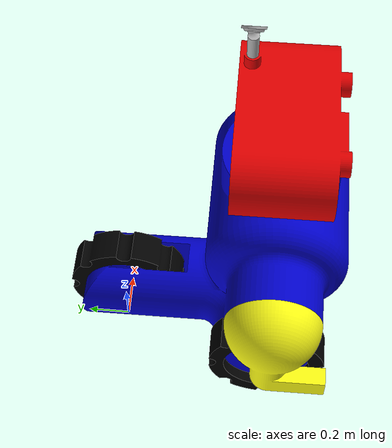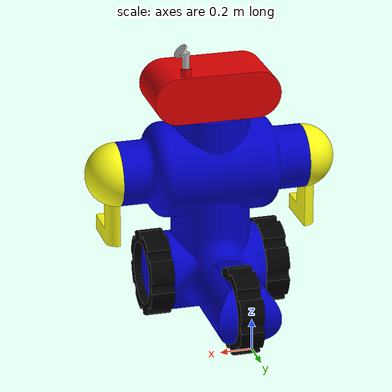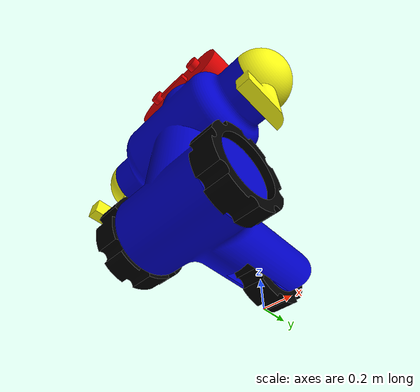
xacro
<?xml version="1.0" ?>
<robot name="pongbot" xmlns:xacro="http://www.ros.org/wiki/xacro">

<xacro:include filename="$(find pongbot_description)/urdf/materials.xacro" />
<xacro:include filename="$(find pongbot_description)/urdf/pongbot.trans" />
<xacro:include filename="$(find pongbot_description)/urdf/pongbot.gazebo" />
<link name="base_link">
  <inertial>
    <origin xyz="0 0 0" rpy="0 0 0"/>
    <mass value="20"/>
    <inertia ixx="808.254731" iyy="900.453782" izz="496.327433" ixy="-0.0" iyz="128.494196" ixz="1e-05"/>
  </inertial>
  <visual>
    <origin xyz="0 0 0" rpy="0 0 0"/>
    <geometry>
      <mesh filename="file://$(find pongbot_description)/meshes/base_link.stl" scale="0.001 0.001 0.001"/>
    </geometry>
    <material name="blue"/>
  </visual>
  <collision>
    <origin xyz="0 0 0" rpy="0 0 0"/>
    <geometry>
      <mesh filename="file://$(find pongbot_description)/meshes/base_link.stl" scale="0.001 0.001 0.001"/>
    </geometry>
  </collision>
</link>

<link name="anthena_link_1">
  <inertial>
    <origin xyz="0 0 0" rpy="0 0 0"/>
    <mass value="0.65"/>
    <inertia ixx="0.004182" iyy="0.004488" izz="0.001811" ixy="0.0" iyz="-0.0" ixz="-0.000791"/>
  </inertial>
  <visual>
    <origin xyz="-0.26218 0.560114 -1.669523" rpy="0 0 0"/>
    <geometry>
      <mesh filename="file://$(find pongbot_description)/meshes/anthena_link_1.stl" scale="0.001 0.001 0.001"/>
    </geometry>
    <material name="silver"/>
  </visual>
  <collision>
    <origin xyz="-0.26218 0.560114 -1.669523" rpy="0 0 0"/>
    <geometry>
      <mesh filename="file://$(find pongbot_description)/meshes/anthena_link_1.stl" scale="0.001 0.001 0.001"/>
    </geometry>
  </collision>
</link>

<link name="head_link_1">
  <inertial>
    <origin xyz="0 0 0" rpy="0 0 0"/>
    <mass value="3"/>
    <inertia ixx="14.707539" iyy="37.183145" izz="42.175614" ixy="-0.040836" iyz="-0.028194" ixz="-0.046689"/>
  </inertial>
  <visual>
    <origin xyz="-0.0675 0.709437 -1.319523" rpy="0 0 0"/>
    <geometry>
      <mesh filename="file://$(find pongbot_description)/meshes/head_link_1.stl" scale="0.001 0.001 0.001"/>
    </geometry>
    <material name="red"/>
  </visual>
  <collision>
    <origin xyz="-0.0675 0.709437 -1.319523" rpy="0 0 0"/>
    <geometry>
      <mesh filename="file://$(find pongbot_description)/meshes/head_link_1.stl" scale="0.001 0.001 0.001"/>
    </geometry>
  </collision>
</link>

<link name="armL_link_1">
  <inertial>
    <origin xyz="0 0 0" rpy="0 0 0"/>
    <mass value="3"/>
    <inertia ixx="5.853631" iyy="4.853082" izz="1.732494" ixy="-0.045403" iyz="-0.582125" ixz="-0.343273"/>
  </inertial>
  <visual>
    <origin xyz="-0.6675 0.713553 -0.956524" rpy="0 0 0"/>
    <geometry>
      <mesh filename="file://$(find pongbot_description)/meshes/armL_link_1.stl" scale="0.001 0.001 0.001"/>
    </geometry>
    <material name="yellow"/>
  </visual>
  <collision>
    <origin xyz="-0.6675 0.713553 -0.956524" rpy="0 0 0"/>
    <geometry>
      <mesh filename="file://$(find pongbot_description)/meshes/armL_link_1.stl" scale="0.001 0.001 0.001"/>
    </geometry>
  </collision>
</link>

<link name="wheelB_link_1">
  <inertial>
    <origin xyz="0 0 0" rpy="0 0 0"/>
    <mass value="30"/>
    <inertia ixx="50.719663" iyy="30.054976" izz="30.054976" ixy="-0.0" iyz="-0.0" ixz="0.0"/>
  </inertial>
  <visual>
    <origin xyz="-0.0675 0.009437 -0.269523" rpy="0 0 0"/>
    <geometry>
      <mesh filename="file://$(find pongbot_description)/meshes/wheelB_link_1.stl" scale="0.001 0.001 0.001"/>
    </geometry>
    <material name="black"/>
  </visual>
  <collision>
    <origin xyz="-0.0675 0.009437 -0.269523" rpy="0 0 0"/>
    <geometry>
      <mesh filename="file://$(find pongbot_description)/meshes/wheelB_link_1.stl" scale="0.001 0.001 0.001"/>
    </geometry>
  </collision>
</link>

<link name="wheelL_link_1">
  <inertial>
    <origin xyz="0 0 0" rpy="0 0 0"/>
    <mass value="20"/>
    <inertia ixx="50.719663" iyy="30.054976" izz="30.054976" ixy="0.0" iyz="-0.0" ixz="0.0"/>
  </inertial>
  <visual>
    <origin xyz="-0.3675 0.709437 -0.269523" rpy="0 0 0"/>
    <geometry>
      <mesh filename="file://$(find pongbot_description)/meshes/wheelL_link_1.stl" scale="0.001 0.001 0.001"/>
    </geometry>
    <material name="black"/>
  </visual>
  <collision>
    <origin xyz="-0.3675 0.709437 -0.269523" rpy="0 0 0"/>
    <geometry>
      <mesh filename="file://$(find pongbot_description)/meshes/wheelL_link_1.stl" scale="0.001 0.001 0.001"/>
    </geometry>
  </collision>
</link>

<link name="wheelR_link_1">
  <inertial>
    <origin xyz="0 0 0" rpy="0 0 0"/>
    <mass value="20"/>
    <inertia ixx="50.719663" iyy="30.054976" izz="30.054976" ixy="0.0" iyz="-0.0" ixz="0.0"/>
  </inertial>
  <visual>
    <origin xyz="0.2325 0.709437 -0.269523" rpy="0 0 0"/>
    <geometry>
      <mesh filename="file://$(find pongbot_description)/meshes/wheelR_link_1.stl" scale="0.001 0.001 0.001"/>
    </geometry>
    <material name="black"/>
  </visual>
  <collision>
    <origin xyz="0.2325 0.709437 -0.269523" rpy="0 0 0"/>
    <geometry>
      <mesh filename="file://$(find pongbot_description)/meshes/wheelR_link_1.stl" scale="0.001 0.001 0.001"/>
    </geometry>
  </collision>
</link>

<link name="armR_link_1">
  <inertial>
    <origin xyz="0 0 0" rpy="0 0 0"/>
    <mass value="3"/>
    <inertia ixx="5.853631" iyy="4.853082" izz="1.732494" ixy="0.045403" iyz="-0.582125" ixz="0.343273"/>
  </inertial>
  <visual>
    <origin xyz="0.5325 0.713553 -0.956524" rpy="0 0 0"/>
    <geometry>
      <mesh filename="file://$(find pongbot_description)/meshes/armR_link_1.stl" scale="0.001 0.001 0.001"/>
    </geometry>
    <material name="yellow"/>
  </visual>
  <collision>
    <origin xyz="0.5325 0.713553 -0.956524" rpy="0 0 0"/>
    <geometry>
      <mesh filename="file://$(find pongbot_description)/meshes/armR_link_1.stl" scale="0.001 0.001 0.001"/>
    </geometry>
  </collision>
</link>

<joint name="anthena_link" type="continuous">
  <origin xyz="0.19468 0.149323 0.35" rpy="0 0 0"/>
  <parent link="head_link_1"/>
  <child link="anthena_link_1"/>
  <axis xyz="0.0 0.0 1.0"/>
</joint>

<joint name="armL_link" type="fixed">
  <origin xyz="0.6675 -0.713553 0.956524" rpy="0 0 0"/>
  <parent link="base_link"/>
  <child link="armL_link_1"/>
  <axis xyz="1.0 0.0 0.0"/>
</joint>

<joint name="armR_link" type="fixed">
  <origin xyz="-0.5325 -0.713553 0.956524" rpy="0 0 0"/>
  <parent link="base_link"/>
  <child link="armR_link_1"/>
  <axis xyz="1.0 0.0 0.0"/>
</joint>

<joint name="wheelB_link" type="continuous">
  <origin xyz="0.0675 -0.009437 0.269523" rpy="0 0 0"/>
  <parent link="base_link"/>
  <child link="wheelB_link_1"/>
  <axis xyz="1.0 0.0 0.0"/>
</joint>

<joint name="wheelL_link" type="continuous">
  <origin xyz="0.3675 -0.709437 0.269523" rpy="0 0 0"/>
  <parent link="base_link"/>
  <child link="wheelL_link_1"/>
  <axis xyz="1.0 0.0 0.0"/>
</joint>

<joint name="wheelR_link" type="continuous">
  <origin xyz="-0.2325 -0.709437 0.269523" rpy="0 0 0"/>
  <parent link="base_link"/>
  <child link="wheelR_link_1"/>
  <axis xyz="1.0 0.0 0.0"/>
</joint>

<joint name="head_link" type="fixed">
  <origin xyz="0.0675 -0.709437 1.319523" rpy="0 0 0"/>
  <parent link="base_link"/>
  <child link="head_link_1"/>
  <axis xyz="0.0 0.0 1.0"/>
</joint>

<joint name="camera_joint" type="fixed">
        <parent link="head_link_1"/>
        <child link="camera_link"/>
        <origin xyz="0 -0.2 0" rpy="0 0 -1.571"/>
    </joint>

<link name="camera_link"></link>

<joint name="camera_optical_joint" type="fixed">
  <parent link="camera_link"/>
  <child link="camera_link_optical"/>
  <origin xyz="0 0 0" rpy="0 0 0"/>
</joint>

<link name="camera_link_optical"></link>

</robot>

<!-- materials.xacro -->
<robot name="pongbot" xmlns:xacro="http://www.ros.org/wiki/xacro" >

<material name="silver">
  <color rgba="0.700 0.700 0.700 1.000"/>
</material>

<material name="red" >
    <color rgba="0.8980392156862745 0.0 0.0 1.0" />
  </material>

  <material name="black">
  <color rgba="0 0 0 1"/>
</material>

<material name="blue">
  <color rgba="0 0 0.8 1"/>
</material>

<material name="yellow" >
    <color rgba="1.0 1.0 0.0784313725490196 1.0" />
  </material>

</robot>
